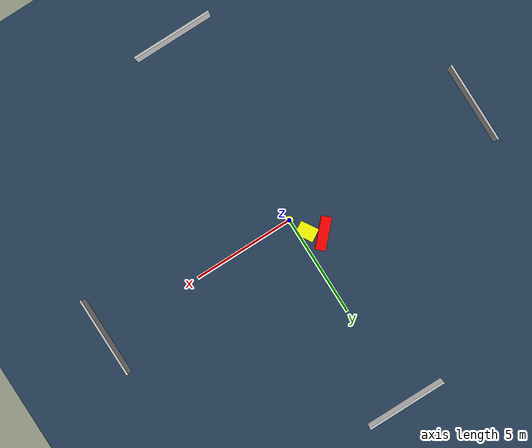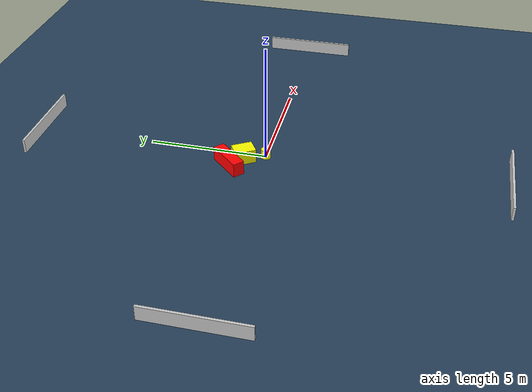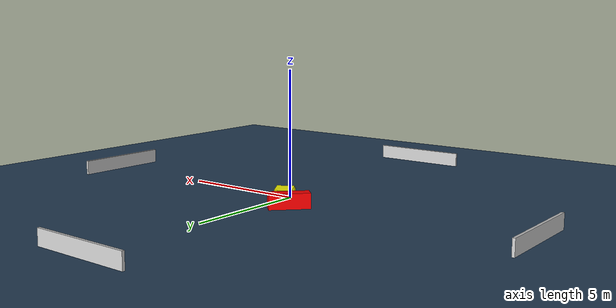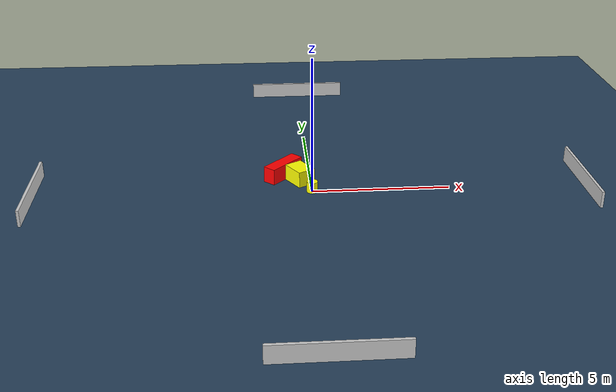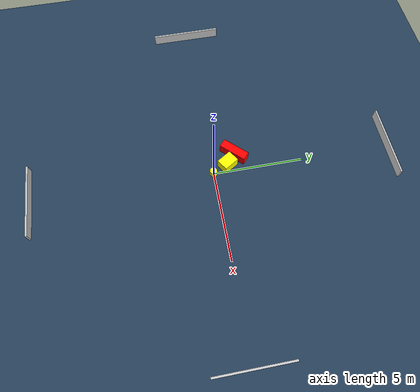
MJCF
<?xml version="1.0" ?>
<mujoco model="generated_environment">
  <option timestep="0.01" integrator="RK4" cone="elliptic"/>
  <default>
    <geom density="1"/>
  </default>
  <asset>
    <texture builtin="gradient" height="3072" name="skybox" rgb1="0.3 0.5 0.7" rgb2="0 0 0" type="skybox" width="512"/>
    <texture builtin="checker" height="300" name="groundplane" rgb1="0.2 0.3 0.4" rgb2="0.1 0.2 0.3" type="2d" width="300"/>
    <material name="groundplane" reflectance="0.2" texrepeat="5 5" texture="groundplane"/>
  </asset>
  <worldbody>
    <light dir="0 0 -1" directional="true" pos="0 0 1.5"/>
    <geom condim="3" friction="0.5 0.005 0.001" material="groundplane" name="floor" pos="0 0 0" size="0 0 0.05" type="plane"/>
    <body name="walls">
      <geom name="wall_1" condim="4" pos="-10.0 0.0 0.3" rgba="0.800000011920929 0.800000011920929 0.800000011920929 1.0" size="0.05 2.0 0.3" type="box"/>
      <geom name="wall_2" condim="4" pos="10.0 0.0 0.3" rgba="0.800000011920929 0.800000011920929 0.800000011920929 1.0" size="0.05 2.0 0.3" type="box"/>
      <geom name="wall_3" condim="4" pos="0.0 -10.0 0.3" rgba="0.800000011920929 0.800000011920929 0.800000011920929 1.0" size="2.0 0.05 0.3" type="box"/>
      <geom name="wall_4" condim="4" pos="0.0 10.0 0.3" rgba="0.800000011920929 0.800000011920929 0.800000011920929 1.0" size="2.0 0.05 0.3" type="box"/>
    </body>
    <body name="robot">
      <joint name="joint_x" type="slide" pos="0 0 0" axis="1 0 0"/>
      <joint name="joint_y" type="slide" pos="0 0 0" axis="0 1 0"/>
      <geom name="robot" type="cylinder" pos="0.0 0.0 0.2" size="0.2 0.2 0.0" mass="5.0" friction="1.0 0.005 0.0001" condim="4" rgba="1.0 1.0 0.0 1.0"/>
    </body>
    <body name="obstacle_1_movable">
      <geom name="obstacle_1_movable" condim="4" pos="-0.39499306934856954 0.8643144070842075 0.3" euler="0 0 301.6516894037454" friction="0.0 0.005 0.001" rgba="1.0 1.0 0.0 1.0" size="0.4461685486011717 0.3365633878571649 0.3" type="box" mass="0.1"/>
      <joint type="free"/>
    </body>
    <body name="obstacle_2_static">
      <geom name="obstacle_2_static" condim="4" pos="-0.9967685316369457 1.3414779273176265 0.3" euler="0 0 226.46831687648643" friction="0.0 0.005 0.001" rgba="1.0 0.0 0.0 1.0" size="0.7845732831761096 0.2454250492918737 0.3" type="box"/>
    </body>
  </worldbody>
  <actuator>
    <motor name="actuator_x" joint="joint_x" gear="1" ctrlrange="-1 1"/>
    <motor name="actuator_y" joint="joint_y" gear="1" ctrlrange="-1 1"/>
  </actuator>
</mujoco>
